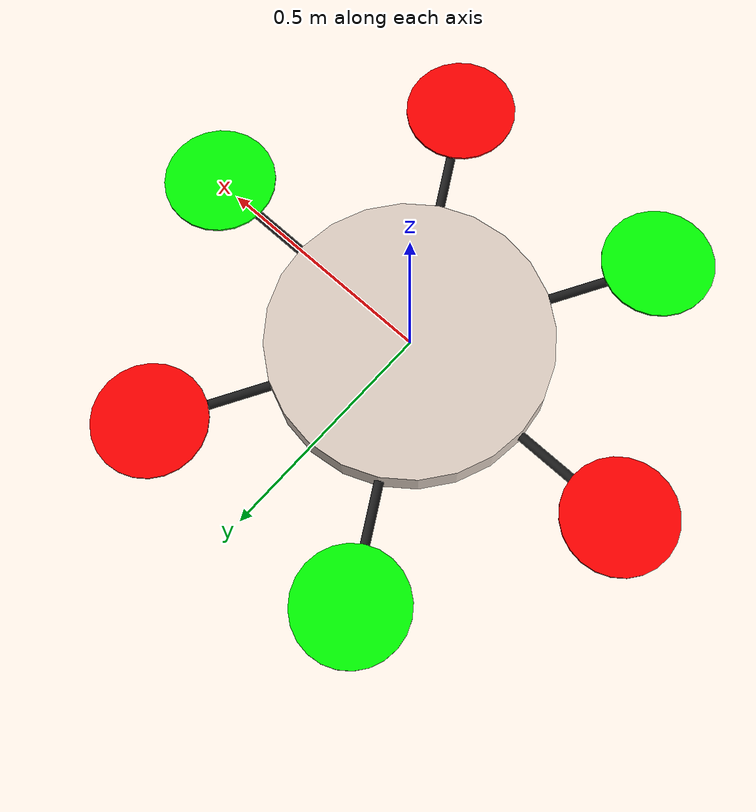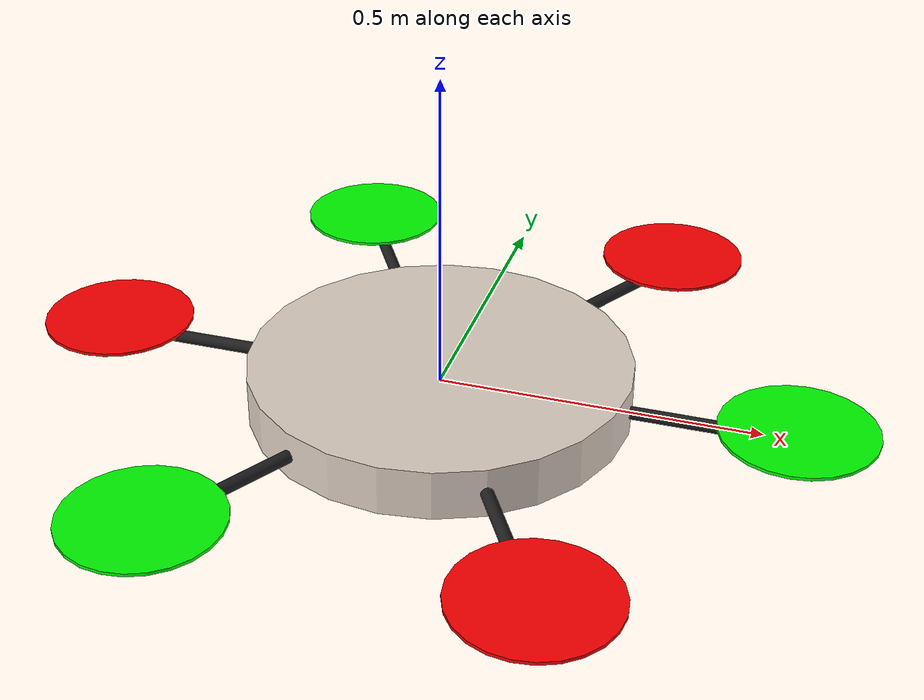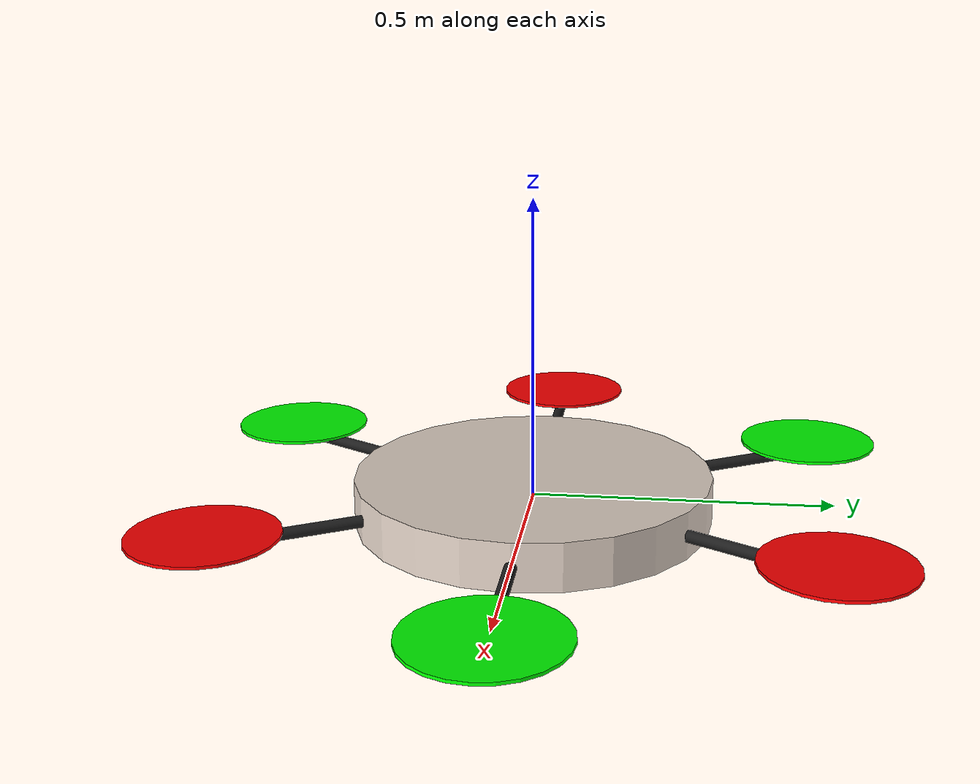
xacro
<?xml version="1.0"?>
<robot xmlns:xacro="http://ros.org/wiki/xacro">

  <xacro:property name="body_radius" value="0.3"/>
  <xacro:property name="body_height" value="0.08"/>
  <xacro:property name="arm_length" value="0.25"/>
  <xacro:property name="arm_radius" value="0.01"/>
  <xacro:property name="motor_radius" value="0.02"/>
  <xacro:property name="motor_height" value="0.03"/>
  <xacro:property name="propeller_radius" value="0.12"/>
  <xacro:property name="propeller_thickness" value="0.005"/>

  <link name="world"/>

  <joint name="base_link_joint" type="prismatic">
    <parent link="world"/>
    <child link="hexacopter_body"/>
    <origin xyz="0 0 0" rpy="0 0 0"/>
    <axis xyz="0 0 1"/>
    <limit lower="-2.0" upper="2.0" effort="50.0" velocity="0.5"/>
  </joint>

  <link name="hexacopter_body">
    <inertial>
      <mass value="1.0"/>
      <origin xyz="0 0 0" rpy="0 0 0"/>
      <inertia ixx="0.02" ixy="0" ixz="0" iyy="0.02" iyz="0" izz="0.02"/>
    </inertial>
    <visual>
      <geometry>
        <cylinder radius="${body_radius}" length="${body_height}"/>
      </geometry>
        <material name="brown">
            <color rgba="${222/255} ${207/255} ${195/255} 1.0"/>
        </material>
    </visual>
    <collision>
      <geometry>
        <cylinder radius="${body_radius}" length="${body_height}"/>
      </geometry>
    </collision>
  </link>

  <link name="arm_1">
    <inertial>
      <mass value="0.1"/>
      <origin xyz="0 0 0" rpy="0 0 0"/>
      <inertia ixx="0.0001" ixy="0" ixz="0" iyy="0.0001" iyz="0" izz="0.0001"/>
    </inertial>
    <visual>
      <geometry>
        <cylinder radius="${arm_radius}" length="${arm_length}"/>
      </geometry>
      <material name="black"/>
    </visual>
    <collision>
      <geometry>
        <cylinder radius="${arm_radius}" length="${arm_length}"/>
      </geometry>
    </collision>
  </link>

  <joint name="arm_joint_1" type="fixed">
    <origin xyz="${(body_radius + arm_length/2)} 0 0" rpy="0 1.57 0"/>
    <parent link="hexacopter_body"/>
    <child link="arm_1"/>
  </joint>

  <link name="motor_1">
    <inertial>
      <mass value="0.05"/>
      <origin xyz="0 0 0" rpy="0 0 0"/>
      <inertia ixx="0.00005" ixy="0" ixz="0" iyy="0.00005" iyz="0" izz="0.00005"/>
    </inertial>
    <visual>
      <geometry>
        <cylinder radius="${motor_radius}" length="${motor_height}"/>
      </geometry>
      <material name="gray"/>
    </visual>
    <collision>
      <geometry>
        <cylinder radius="${motor_radius}" length="${motor_height}"/>
      </geometry>
    </collision>
  </link>

  <joint name="motor_joint_1" type="fixed">
    <origin xyz="0 0 ${arm_length/2}" rpy="0 4.71 0"/>
    <parent link="arm_1"/>
    <child link="motor_1"/>
  </joint>

  <link name="propeller_1">
    <visual>
      <geometry>
        <cylinder radius="${propeller_radius}" length="${propeller_thickness}"/>
      </geometry>
        <material name="green">
            <color rgba="0 1 0 1"/>
        </material>
    </visual>
    <collision>
      <geometry>
        <cylinder radius="${propeller_radius}" length="${propeller_thickness}"/>
      </geometry>
    </collision>
  </link>

  <joint name="propeller_joint_1" type="fixed">
    <origin xyz="0 0 ${motor_height/2 + propeller_thickness/2}" rpy="0 0 0"/>
    <parent link="motor_1"/>
    <child link="propeller_1"/>
  </joint>

  <link name="arm_2">
    <inertial>
      <mass value="0.1"/>
      <origin xyz="0 0 0" rpy="0 0 0"/>
      <inertia ixx="0.0001" ixy="0" ixz="0" iyy="0.0001" iyz="0" izz="0.0001"/>
    </inertial>
    <visual>
      <geometry>
        <cylinder radius="${arm_radius}" length="${arm_length}"/>
      </geometry>
      <material name="black"/>
    </visual>
    <collision>
      <geometry>
        <cylinder radius="${arm_radius}" length="${arm_length}"/>
      </geometry>
    </collision>
  </link>

  <joint name="arm_joint_2" type="fixed">
    <origin xyz="${(body_radius + arm_length/2) * cos(1.047)} ${(body_radius + arm_length/2) * sin(1.047)} 0" rpy="0 1.57 1.047"/>
    <parent link="hexacopter_body"/>
    <child link="arm_2"/>
  </joint>

  <link name="motor_2">
    <inertial>
      <mass value="0.05"/>
      <origin xyz="0 0 0" rpy="0 0 0"/>
      <inertia ixx="0.00005" ixy="0" ixz="0" iyy="0.00005" iyz="0" izz="0.00005"/>
    </inertial>
    <visual>
      <geometry>
        <cylinder radius="${motor_radius}" length="${motor_height}"/>
      </geometry>
      <material name="gray"/>
    </visual>
    <collision>
      <geometry>
        <cylinder radius="${motor_radius}" length="${motor_height}"/>
      </geometry>
    </collision>
  </link>

  <joint name="motor_joint_2" type="fixed">
    <origin xyz="0 0 ${arm_length/2}" rpy="0 4.71 0"/>
    <parent link="arm_2"/>
    <child link="motor_2"/>
  </joint>

  <link name="propeller_2">
    <visual>
      <geometry>
        <cylinder radius="${propeller_radius}" length="${propeller_thickness}"/>
      </geometry>
        <material name="red">
            <color rgba="1 0 0 1"/>
        </material>
    </visual>
    <collision>
      <geometry>
        <cylinder radius="${propeller_radius}" length="${propeller_thickness}"/>
      </geometry>
    </collision>
  </link>

  <joint name="propeller_joint_2" type="fixed">
    <origin xyz="0 0 ${motor_height/2 + propeller_thickness/2}" rpy="0 0 0"/>
    <parent link="motor_2"/>
    <child link="propeller_2"/>
  </joint>

  <link name="arm_3">
    <inertial>
      <mass value="0.1"/>
      <origin xyz="0 0 0" rpy="0 0 0"/>
      <inertia ixx="0.0001" ixy="0" ixz="0" iyy="0.0001" iyz="0" izz="0.0001"/>
    </inertial>
    <visual>
      <geometry>
        <cylinder radius="${arm_radius}" length="${arm_length}"/>
      </geometry>
      <material name="black"/>
    </visual>
    <collision>
      <geometry>
        <cylinder radius="${arm_radius}" length="${arm_length}"/>
      </geometry>
    </collision>
  </link>

  <joint name="arm_joint_3" type="fixed">
    <origin xyz="${(body_radius + arm_length/2) * cos(2.094)} ${(body_radius + arm_length/2) * sin(2.094)} 0" rpy="0 1.57 2.094"/>
    <parent link="hexacopter_body"/>
    <child link="arm_3"/>
  </joint>

  <link name="motor_3">
    <inertial>
      <mass value="0.05"/>
      <origin xyz="0 0 0" rpy="0 0 0"/>
      <inertia ixx="0.00005" ixy="0" ixz="0" iyy="0.00005" iyz="0" izz="0.00005"/>
    </inertial>
    <visual>
      <geometry>
        <cylinder radius="${motor_radius}" length="${motor_height}"/>
      </geometry>
      <material name="gray"/>
    </visual>
    <collision>
      <geometry>
        <cylinder radius="${motor_radius}" length="${motor_height}"/>
      </geometry>
    </collision>
  </link>

  <joint name="motor_joint_3" type="fixed">
    <origin xyz="0 0 ${arm_length/2}" rpy="0 4.71 0"/>
    <parent link="arm_3"/>
    <child link="motor_3"/>
  </joint>

  <link name="propeller_3">
    <visual>
      <geometry>
        <cylinder radius="${propeller_radius}" length="${propeller_thickness}"/>
      </geometry>
        <material name="green">
            <color rgba="0 1 0 1"/>
        </material>
    </visual>
    <collision>
      <geometry>
        <cylinder radius="${propeller_radius}" length="${propeller_thickness}"/>
      </geometry>
    </collision>
  </link>

  <joint name="propeller_joint_3" type="fixed">
    <origin xyz="0 0 ${motor_height/2 + propeller_thickness/2}" rpy="0 0 0"/>
    <parent link="motor_3"/>
    <child link="propeller_3"/>
  </joint>

  <link name="arm_4">
    <inertial>
      <mass value="0.1"/>
      <origin xyz="0 0 0" rpy="0 0 0"/>
      <inertia ixx="0.0001" ixy="0" ixz="0" iyy="0.0001" iyz="0" izz="0.0001"/>
    </inertial>
    <visual>
      <geometry>
        <cylinder radius="${arm_radius}" length="${arm_length}"/>
      </geometry>
      <material name="black"/>
    </visual>
    <collision>
      <geometry>
        <cylinder radius="${arm_radius}" length="${arm_length}"/>
      </geometry>
    </collision>
  </link>

  <joint name="arm_joint_4" type="fixed">
    <origin xyz="-${(body_radius + arm_length/2)} 0 0" rpy="0 1.57 3.1416"/>
    <parent link="hexacopter_body"/>
    <child link="arm_4"/>
  </joint>

  <link name="motor_4">
    <inertial>
      <mass value="0.05"/>
      <origin xyz="0 0 0" rpy="0 0 0"/>
      <inertia ixx="0.00005" ixy="0" ixz="0" iyy="0.00005" iyz="0" izz="0.00005"/>
    </inertial>
    <visual>
      <geometry>
        <cylinder radius="${motor_radius}" length="${motor_height}"/>
      </geometry>
      <material name="gray"/>
    </visual>
    <collision>
      <geometry>
        <cylinder radius="${motor_radius}" length="${motor_height}"/>
      </geometry>
    </collision>
  </link>

  <joint name="motor_joint_4" type="fixed">
    <origin xyz="0 0 ${arm_length/2}" rpy="0 4.71 0"/>
    <parent link="arm_4"/>
    <child link="motor_4"/>
  </joint>

  <link name="propeller_4">
    <visual>
      <geometry>
        <cylinder radius="${propeller_radius}" length="${propeller_thickness}"/>
      </geometry>
        <material name="red">
            <color rgba="1 0 0 1"/>
        </material>
    </visual>
    <collision>
      <geometry>
        <cylinder radius="${propeller_radius}" length="${propeller_thickness}"/>
      </geometry>
    </collision>
  </link>

  <joint name="propeller_joint_4" type="fixed">
    <origin xyz="0 0 ${motor_height/2 + propeller_thickness/2}" rpy="0 0 0"/>
    <parent link="motor_4"/>
    <child link="propeller_4"/>
  </joint>

  <link name="arm_5">
    <inertial>
      <mass value="0.1"/>
      <origin xyz="0 0 0" rpy="0 0 0"/>
      <inertia ixx="0.0001" ixy="0" ixz="0" iyy="0.0001" iyz="0" izz="0.0001"/>
    </inertial>
    <visual>
      <geometry>
        <cylinder radius="${arm_radius}" length="${arm_length}"/>
      </geometry>
      <material name="black"/>
    </visual>
    <collision>
      <geometry>
        <cylinder radius="${arm_radius}" length="${arm_length}"/>
      </geometry>
    </collision>
  </link>

  <joint name="arm_joint_5" type="fixed">
    <origin xyz="${(body_radius + arm_length/2) * cos(4.1888)} ${(body_radius + arm_length/2) * sin(4.1888)} 0" rpy="0 1.57 4.1888"/>
    <parent link="hexacopter_body"/>
    <child link="arm_5"/>
  </joint>

  <link name="motor_5">
    <inertial>
      <mass value="0.05"/>
      <origin xyz="0 0 0" rpy="0 0 0"/>
      <inertia ixx="0.00005" ixy="0" ixz="0" iyy="0.00005" iyz="0" izz="0.00005"/>
    </inertial>
    <visual>
      <geometry>
        <cylinder radius="${motor_radius}" length="${motor_height}"/>
      </geometry>
      <material name="gray"/>
    </visual>
    <collision>
      <geometry>
        <cylinder radius="${motor_radius}" length="${motor_height}"/>
      </geometry>
    </collision>
  </link>

  <joint name="motor_joint_5" type="fixed">
    <origin xyz="0 0 ${arm_length/2}" rpy="0 4.71 0"/>
    <parent link="arm_5"/>
    <child link="motor_5"/>
  </joint>

  <link name="propeller_5">
    <visual>
      <geometry>
        <cylinder radius="${propeller_radius}" length="${propeller_thickness}"/>
      </geometry>
        <material name="green">
            <color rgba="0 1 0 1"/>
        </material>
    </visual>
    <collision>
      <geometry>
        <cylinder radius="${propeller_radius}" length="${propeller_thickness}"/>
      </geometry>
    </collision>
  </link>

  <joint name="propeller_joint_5" type="fixed">
    <origin xyz="0 0 ${motor_height/2 + propeller_thickness/2}" rpy="0 0 0"/>
    <parent link="motor_5"/>
    <child link="propeller_5"/>
  </joint>

  <link name="arm_6">
    <inertial>
      <mass value="0.1"/>
      <origin xyz="0 0 0" rpy="0 0 0"/>
      <inertia ixx="0.0001" ixy="0" ixz="0" iyy="0.0001" iyz="0" izz="0.0001"/>
    </inertial>
    <visual>
      <geometry>
        <cylinder radius="${arm_radius}" length="${arm_length}"/>
      </geometry>
      <material name="black"/>
    </visual>
    <collision>
      <geometry>
        <cylinder radius="${arm_radius}" length="${arm_length}"/>
      </geometry>
    </collision>
  </link>

  <joint name="arm_joint_6" type="fixed">
    <origin xyz="${(body_radius + arm_length/2) * cos(5.236)} ${(body_radius + arm_length/2) * sin(5.236)} 0" rpy="0 1.57 5.236"/>
    <parent link="hexacopter_body"/>
    <child link="arm_6"/>
  </joint>

  <link name="motor_6">
    <inertial>
      <mass value="0.05"/>
      <origin xyz="0 0 0" rpy="0 0 0"/>
      <inertia ixx="0.00005" ixy="0" ixz="0" iyy="0.00005" iyz="0" izz="0.00005"/>
    </inertial>
    <visual>
      <geometry>
        <cylinder radius="${motor_radius}" length="${motor_height}"/>
      </geometry>
      <material name="gray"/>
    </visual>
    <collision>
      <geometry>
        <cylinder radius="${motor_radius}" length="${motor_height}"/>
      </geometry>
    </collision>
  </link>

  <joint name="motor_joint_6" type="fixed">
    <origin xyz="0 0 ${arm_length/2}" rpy="0 4.71 0"/>
    <parent link="arm_6"/>
    <child link="motor_6"/>
  </joint>

  <link name="propeller_6">
    <visual>
      <geometry>
        <cylinder radius="${propeller_radius}" length="${propeller_thickness}"/>
      </geometry>
        <material name="red">
            <color rgba="1 0 0 1"/>
        </material>
    </visual>
    <collision>
      <geometry>
        <cylinder radius="${propeller_radius}" length="${propeller_thickness}"/>
      </geometry>
    </collision>
  </link>

  <joint name="propeller_joint_6" type="fixed">
    <origin xyz="0 0 ${motor_height/2 + propeller_thickness/2}" rpy="0 0 0"/>
    <parent link="motor_6"/>
    <child link="propeller_6"/>
  </joint>
</robot>
